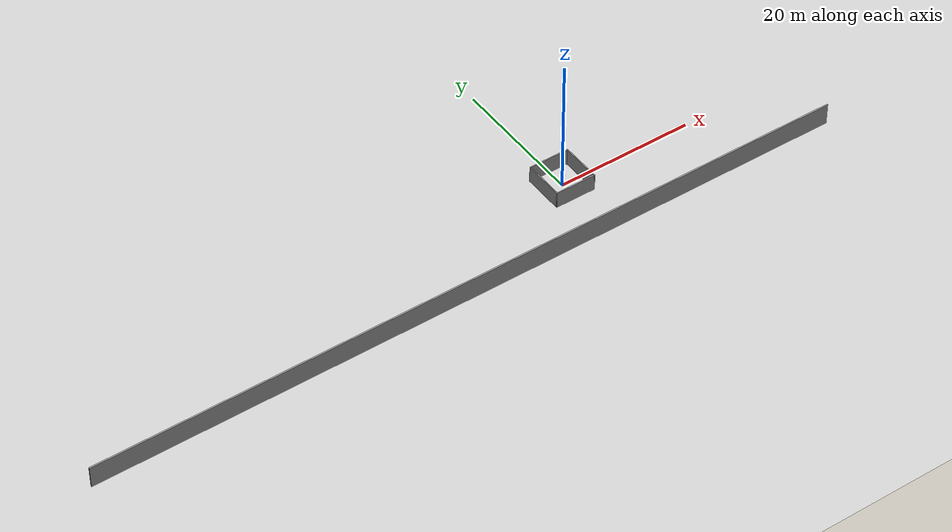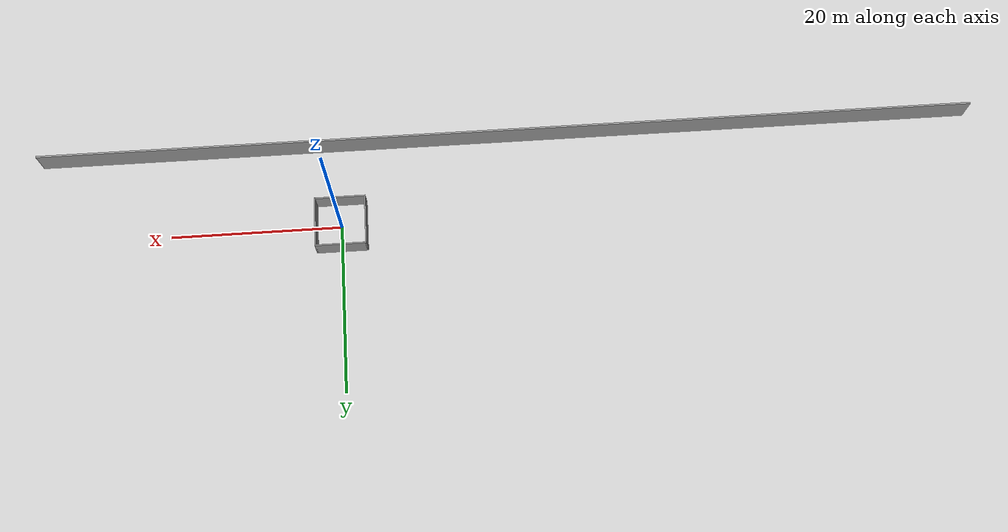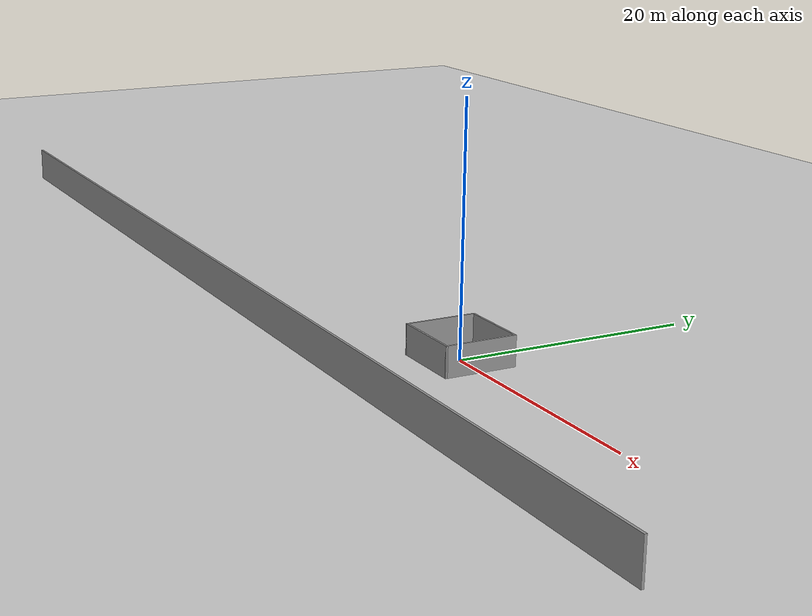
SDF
<sdf version="1.6">
 <world name="default">
  <light name="sun" type="directional">
   <pose>0 0 10 0 -0 0</pose>
   <diffuse>0.8 0.8 0.8 1</diffuse>
   <specular>0.2 0.2 0.2 1</specular>
   <attenuation>
    <range>1000</range>
    <constant>0.9</constant>
    <linear>0.01</linear>
    <quadratic>0.001</quadratic>
   </attenuation>
   <direction>0.5 0.1 -0.9</direction>
  </light>
  <model name="ground_plane">
   <static>1</static>
   <link name="link">
    <collision name="collision">
     <geometry><plane><normal>0 0 1</normal><size>100 100</size></plane></geometry>
     <surface><friction><ode><mu>100</mu><mu2>50</mu2></ode></friction></surface>
    </collision>
    <visual name="visual">
     <cast_shadows>0</cast_shadows>
     <geometry><plane><normal>0 0 1</normal><size>100 100</size></plane></geometry>
     <material>
      <script><uri>file://media/materials/scripts/gazebo.material</uri><name>Gazebo/Grey</name></script>
     </material>
    </visual>
    <velocity_decay><linear>0</linear><angular>0</angular></velocity_decay>
   </link>
  </model>
  <scene><ambient>0.4 0.4 0.4 1</ambient><background>0.7 0.7 0.7 1</background><shadows>0</shadows></scene>
  <physics name="default_physics" default="0" type="ode">
   <max_step_size>0.01</max_step_size>
   <real_time_factor>1</real_time_factor>
   <real_time_update_rate>0</real_time_update_rate>
  </physics>
  <gravity>0 0 -9.8</gravity>
  <magnetic_field>6e-06 2.3e-05 -4.2e-05</magnetic_field>
  <atmosphere type="adiabatic"/>
  <spherical_coordinates>
   <surface_model>EARTH_WGS84</surface_model>
   <latitude_deg>0</latitude_deg>
   <longitude_deg>0</longitude_deg>
   <elevation>0</elevation>
   <heading_deg>0</heading_deg>
  </spherical_coordinates>
  <model name="grey_wall">
   <static>1</static>
   <link name="link">
    <pose>0 0 1.4 0 -0 0</pose>
    <collision name="collision"><geometry><box><size>110.947 0.2 3.45679</size></box></geometry></collision>
    <visual name="visual">
     <cast_shadows>0</cast_shadows>
     <geometry><box><size>110.947 0.2 3.45679</size></box></geometry>
     <material>
      <script><uri>file://media/materials/scripts/gazebo.material</uri><name>Gazebo/Grey</name></script>
      <ambient>1 1 1 1</ambient>
     </material>
    </visual>
   </link>
   <pose>-20 -10 0 0 -0 0</pose>
  </model>
  <model name="4room_final">
   <link name="Wall_116">
    <collision name="Wall_116_Collision">
     <geometry><box><size>6 0.15 2.5</size></box></geometry>
     <pose>0 0 1.25 0 -0 0</pose>
    </collision>
    <visual name="Wall_116_Visual">
     <pose>0 0 1.25 0 -0 0</pose>
     <geometry><box><size>6 0.15 2.5</size></box></geometry>
     <material>
      <script><uri>file://media/materials/scripts/gazebo.material</uri><name>Gazebo/Grey</name></script>
      <ambient>1 1 1 1</ambient>
     </material>
     <meta><layer>0</layer></meta>
    </visual>
    <pose>-2.925 0 0 0 -0 1.5708</pose>
   </link>
   <link name="Wall_118">
    <collision name="Wall_118_Collision">
     <geometry><box><size>6 0.15 2.5</size></box></geometry>
     <pose>0 0 1.25 0 -0 0</pose>
    </collision>
    <visual name="Wall_118_Visual">
     <pose>0 0 1.25 0 -0 0</pose>
     <geometry><box><size>6 0.15 2.5</size></box></geometry>
     <material>
      <script><uri>file://media/materials/scripts/gazebo.material</uri><name>Gazebo/Grey</name></script>
      <ambient>1 1 1 1</ambient>
     </material>
     <meta><layer>0</layer></meta>
    </visual>
    <pose>0 2.925 0 0 -0 0</pose>
   </link>
   <link name="Wall_119">
    <collision name="Wall_119_Collision">
     <geometry><box><size>6 0.15 2.5</size></box></geometry>
     <pose>0 0 1.25 0 -0 0</pose>
    </collision>
    <visual name="Wall_119_Visual">
     <pose>0 0 1.25 0 -0 0</pose>
     <geometry><box><size>6 0.15 2.5</size></box></geometry>
     <material>
      <script><uri>file://media/materials/scripts/gazebo.material</uri><name>Gazebo/Grey</name></script>
      <ambient>1 1 1 1</ambient>
     </material>
     <meta><layer>0</layer></meta>
    </visual>
    <pose>2.925 0 0 0 0 -1.5708</pose>
   </link>
   <link name="Wall_121">
    <collision name="Wall_121_Collision">
     <geometry><box><size>6 0.15 2.5</size></box></geometry>
     <pose>0 0 1.25 0 -0 0</pose>
    </collision>
    <visual name="Wall_121_Visual">
     <pose>0 0 1.25 0 -0 0</pose>
     <geometry><box><size>6 0.15 2.5</size></box></geometry>
     <material>
      <script><uri>file://media/materials/scripts/gazebo.material</uri><name>Gazebo/Grey</name></script>
      <ambient>1 1 1 1</ambient>
     </material>
     <meta><layer>0</layer></meta>
    </visual>
    <pose>0 -2.925 0 0 -0 0</pose>
   </link>
   <static>1</static>
  </model>
 </world>
</sdf>
